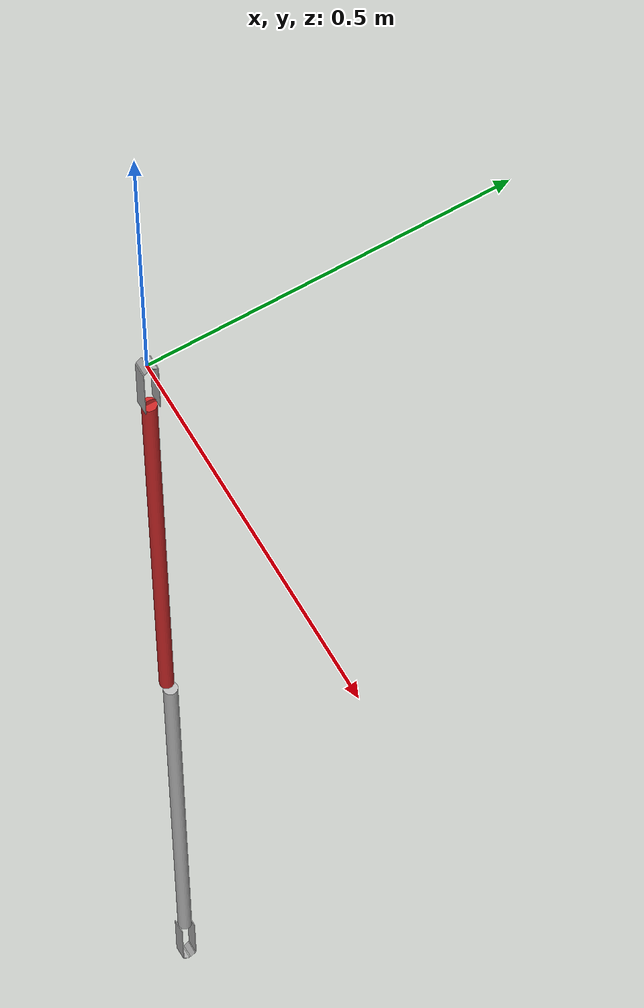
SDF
<sdf version='1.7'>
  <model name='gibbon'>
    <link name='link_1_tip'>
      <inertial>
        <pose>0 0 0 0 -0 0</pose>
        <mass>1e-05</mass>
        <inertia>
          <ixx>1</ixx>
          <ixy>0</ixy>
          <ixz>0</ixz>
          <iyy>1</iyy>
          <iyz>0</iyz>
          <izz>1</izz>
        </inertia>
      </inertial>
    </link>
    <joint name='link_1__link_1_tip' type='revolute'>
      <pose relative_to='link_1_tip'>0 0 -0.1 0 -0 0</pose>
      <parent>link_1_tip</parent>
      <child>link_1</child>
      <axis>
        <xyz>1 0 0</xyz>
        <limit>
          <lower>0</lower>
          <upper>0</upper>
          <effort>0</effort>
          <velocity>0</velocity>
        </limit>
        <dynamics>
          <spring_reference>0</spring_reference>
          <spring_stiffness>0</spring_stiffness>
        </dynamics>
      </axis>
    </joint>
    <link name='link_1'>
      <pose relative_to='link_1__link_1_tip'>0 0 0 0 -0 0</pose>
      <inertial>
        <pose>0 0 -0.399996 0 -0 0</pose>
        <mass>1.00001</mass>
        <inertia>
          <ixx>0.05</ixx>
          <ixy>0</ixy>
          <ixz>0</ixz>
          <iyy>0.05</iyy>
          <iyz>0</iyz>
          <izz>0.01</izz>
        </inertia>
      </inertial>
      <collision name='link_1_collision'>
        <pose>0 0 -0.4 0 -0 0</pose>
        <geometry>
          <cylinder>
            <length>0.8</length>
            <radius>0.01</radius>
          </cylinder>
        </geometry>
        <surface>
          <contact>
            <ode/>
          </contact>
          <friction>
            <ode/>
          </friction>
        </surface>
      </collision>
      <collision name='link_1_gripper_pole_collision_1'>
        <pose>0 0 0 0 -1.5708 0</pose>
        <geometry>
          <cylinder>
            <length>0</length>
            <radius>0.01</radius>
          </cylinder>
        </geometry>
        <surface>
          <contact>
            <ode/>
          </contact>
          <friction>
            <ode/>
          </friction>
        </surface>
      </collision>
      <visual name='link_1_visual'>
        <pose>0 0 -0.4 0 -0 0</pose>
        <geometry>
          <cylinder>
            <length>0.8</length>
            <radius>0.01</radius>
          </cylinder>
        </geometry>
        <material>
          <script>
            <name>Gazebo/Red</name>
            <uri>file://media/materials/scripts/gazebo.material</uri>
          </script>
        </material>
      </visual>
      <visual name='link_1_gripper_pole_visual_1'>
        <pose>0 0 0 0 -1.5708 0</pose>
        <geometry>
          <cylinder>
            <length>0</length>
            <radius>0.01</radius>
          </cylinder>
        </geometry>
        <material>
          <script>
            <name>Gazebo/Red</name>
            <uri>file://media/materials/scripts/gazebo.material</uri>
          </script>
        </material>
      </visual>
    </link>
    <joint name='link_1_left_gripper_joint' type='revolute'>
      <pose relative_to='link_1'>0 0.01 0 0 -1.5708 0</pose>
      <parent>link_1</parent>
      <child>link_1_left_gripper</child>
      <axis>
        <xyz>0 0 1</xyz>
        <limit>
          <lower>0</lower>
          <upper>3</upper>
          <effort>100</effort>
          <velocity>30</velocity>
        </limit>
        <dynamics>
          <spring_reference>0</spring_reference>
          <spring_stiffness>0</spring_stiffness>
        </dynamics>
      </axis>
    </joint>
    <link name='link_1_left_gripper'>
      <pose relative_to='link_1_left_gripper_joint'>0 0 0 0 -0 0</pose>
      <inertial>
        <pose>0 0 0 0 -0 0</pose>
        <mass>0.05</mass>
        <inertia>
          <ixx>1</ixx>
          <ixy>0</ixy>
          <ixz>0</ixz>
          <iyy>1</iyy>
          <iyz>0</iyz>
          <izz>1</izz>
        </inertia>
      </inertial>
      <collision name='link_1_left_gripper_collision'>
        <pose>0.05 0 0 1.5708 -0 1.5708</pose>
        <geometry>
          <box>
            <size>0.001 0.02 0.1</size>
          </box>
        </geometry>
        <surface>
          <contact>
            <ode>
              <spring_reference>0</spring_reference>
              <spring_stiffness>1000</spring_stiffness>
            </ode>
          </contact>
          <friction>
            <ode>
              <mu>0.001</mu>
              <mu2>0.001</mu2>
            </ode>
          </friction>
        </surface>
      </collision>
      <collision name='link_1_left_gripper_collision_1'>
        <pose>0.104 -0.005 0 0 -0 0.7</pose>
        <geometry>
          <box>
            <size>0.001 0.01 0.02</size>
          </box>
        </geometry>
        <surface>
          <contact>
            <ode>
              <spring_reference>0</spring_reference>
              <spring_stiffness>1000</spring_stiffness>
            </ode>
          </contact>
          <friction>
            <ode>
              <mu>0.001</mu>
              <mu2>0.001</mu2>
            </ode>
          </friction>
        </surface>
      </collision>
      <visual name='link_1_left_gripper_visual'>
        <pose>0.05 0 0 1.5708 -0 1.5708</pose>
        <geometry>
          <box>
            <size>0.001 0.02 0.1</size>
          </box>
        </geometry>
      </visual>
      <visual name='link_1_left_gripper_visual_1'>
        <pose>0.104 -0.005 0 0 -0 0.7</pose>
        <geometry>
          <box>
            <size>0.001 0.01 0.02</size>
          </box>
        </geometry>
      </visual>
    </link>
    <joint name='link_1_right_gripper_joint' type='revolute'>
      <pose relative_to='link_1'>0 -0.01 0 0 -1.5708 0</pose>
      <parent>link_1</parent>
      <child>link_1_right_gripper</child>
      <axis>
        <xyz>0 0 -1</xyz>
        <limit>
          <lower>0</lower>
          <upper>3</upper>
          <effort>100</effort>
          <velocity>30</velocity>
        </limit>
        <dynamics>
          <spring_reference>0</spring_reference>
          <spring_stiffness>0</spring_stiffness>
        </dynamics>
      </axis>
    </joint>
    <link name='link_1_right_gripper'>
      <pose relative_to='link_1_right_gripper_joint'>0 0 0 0 -0 0</pose>
      <inertial>
        <pose>0 0 0 0 -0 0</pose>
        <mass>0.05</mass>
        <inertia>
          <ixx>1</ixx>
          <ixy>0</ixy>
          <ixz>0</ixz>
          <iyy>1</iyy>
          <iyz>0</iyz>
          <izz>1</izz>
        </inertia>
      </inertial>
      <collision name='link_1_right_gripper_collision'>
        <pose>0.05 0 0 -1.5708 -0 -1.5708</pose>
        <geometry>
          <box>
            <size>0.001 0.02 0.1</size>
          </box>
        </geometry>
        <surface>
          <contact>
            <ode>
              <spring_reference>0</spring_reference>
              <spring_stiffness>1000</spring_stiffness>
            </ode>
          </contact>
          <friction>
            <ode>
              <mu>0.001</mu>
              <mu2>0.001</mu2>
            </ode>
          </friction>
        </surface>
      </collision>
      <collision name='link_1_right_gripper_collision_1'>
        <pose>0.104 0.005 0 0 0 -0.7</pose>
        <geometry>
          <box>
            <size>0.001 0.01 0.02</size>
          </box>
        </geometry>
        <surface>
          <contact>
            <ode>
              <spring_reference>0</spring_reference>
              <spring_stiffness>1000</spring_stiffness>
            </ode>
          </contact>
          <friction>
            <ode>
              <mu>0.001</mu>
              <mu2>0.001</mu2>
            </ode>
          </friction>
        </surface>
      </collision>
      <visual name='link_1_right_gripper_visual'>
        <pose>0.05 0 0 -1.5708 -0 -1.5708</pose>
        <geometry>
          <box>
            <size>0.001 0.02 0.1</size>
          </box>
        </geometry>
      </visual>
      <visual name='link_1_right_gripper_visual_1'>
        <pose>0.104 0.005 0 0 0 -0.7</pose>
        <geometry>
          <box>
            <size>0.001 0.01 0.02</size>
          </box>
        </geometry>
      </visual>
    </link>
    <joint name='link_1__link_2' type='revolute'>
      <pose relative_to='link_1'>0.01 0 -0.8 3.14159 -0 0</pose>
      <parent>link_1</parent>
      <child>link_2</child>
      <axis>
        <xyz>1 0 0</xyz>
        <limit>
          <lower>-6.28319</lower>
          <upper>6.28319</upper>
          <effort>100</effort>
          <velocity>30</velocity>
        </limit>
        <dynamics>
          <damping>0.0</damping>
          <friction>0.0</friction>
          <spring_reference>0.0</spring_reference>
          <spring_stiffness>0.0</spring_stiffness>
        </dynamics>
      </axis>
    </joint>
    <link name='link_2'>
      <pose relative_to='link_1__link_2'>0 0 0 0 -0 0</pose>
      <inertial>
        <pose>0 0 0.400004 0 -0 0</pose>
        <mass>1.00001</mass>
        <inertia>
          <ixx>0.05</ixx>
          <ixy>0</ixy>
          <ixz>0</ixz>
          <iyy>0.05</iyy>
          <iyz>0</iyz>
          <izz>0.01</izz>
        </inertia>
      </inertial>
      <collision name='link_2_collision'>
        <pose>0 0 0.4 0 -0 0</pose>
        <geometry>
          <cylinder>
            <length>0.8</length>
            <radius>0.01</radius>
          </cylinder>
        </geometry>
      </collision>
      <collision name='link_2_gripper_pole_collision_1'>
        <pose>0 0 0.8 0 -1.5708 0</pose>
        <geometry>
          <cylinder>
            <length>0</length>
            <radius>0.01</radius>
          </cylinder>
        </geometry>
      </collision>
      <visual name='link_2_visual'>
        <pose>0 0 0.4 0 -0 0</pose>
        <geometry>
          <cylinder>
            <length>0.8</length>
            <radius>0.01</radius>
          </cylinder>
        </geometry>
      </visual>
      <visual name='link_2_gripper_pole_visual_1'>
        <pose>0 0 0.8 0 -1.5708 0</pose>
        <geometry>
          <cylinder>
            <length>0</length>
            <radius>0.01</radius>
          </cylinder>
        </geometry>
      </visual>
    </link>
    <joint name='link_2_left_gripper_joint' type='revolute'>
      <pose relative_to='link_2'>0 0.01 0.8 0 -1.5708 0</pose>
      <parent>link_2</parent>
      <child>link_2_left_gripper</child>
      <axis>
        <xyz>0 0 1</xyz>
        <limit>
          <lower>0</lower>
          <upper>3</upper>
          <effort>100</effort>
          <velocity>30</velocity>
        </limit>
        <dynamics>
          <spring_reference>0</spring_reference>
          <spring_stiffness>0</spring_stiffness>
        </dynamics>
      </axis>
    </joint>
    <link name='link_2_left_gripper'>
      <pose relative_to='link_2_left_gripper_joint'>0 0 0 0 -0 0</pose>
      <inertial>
        <pose>0 0 0 0 -0 0</pose>
        <mass>0.05</mass>
        <inertia>
          <ixx>1</ixx>
          <ixy>0</ixy>
          <ixz>0</ixz>
          <iyy>1</iyy>
          <iyz>0</iyz>
          <izz>1</izz>
        </inertia>
      </inertial>
      <collision name='link_2_left_gripper_collision'>
        <pose>0.05 0 0 1.5708 -0 1.5708</pose>
        <geometry>
          <box>
            <size>0.001 0.02 0.1</size>
          </box>
        </geometry>
        <surface>
          <contact>
            <ode>
              <spring_reference>0</spring_reference>
              <spring_stiffness>1000</spring_stiffness>
            </ode>
          </contact>
          <friction>
            <ode>
              <mu>0.001</mu>
              <mu2>0.001</mu2>
            </ode>
          </friction>
        </surface>
      </collision>
      <collision name='link_2_left_gripper_collision_1'>
        <pose>0.104 -0.005 0 0 -0 0.7</pose>
        <geometry>
          <box>
            <size>0.001 0.01 0.02</size>
          </box>
        </geometry>
        <surface>
          <contact>
            <ode>
              <spring_reference>0</spring_reference>
              <spring_stiffness>1000</spring_stiffness>
            </ode>
          </contact>
          <friction>
            <ode>
              <mu>0.001</mu>
              <mu2>0.001</mu2>
            </ode>
          </friction>
        </surface>
      </collision>
      <visual name='link_2_left_gripper_visual'>
        <pose>0.05 0 0 1.5708 -0 1.5708</pose>
        <geometry>
          <box>
            <size>0.001 0.02 0.1</size>
          </box>
        </geometry>
      </visual>
      <visual name='link_2_left_gripper_visual_1'>
        <pose>0.104 -0.005 0 0 -0 0.7</pose>
        <geometry>
          <box>
            <size>0.001 0.01 0.02</size>
          </box>
        </geometry>
      </visual>
    </link>
    <joint name='link_2_right_gripper_joint' type='revolute'>
      <pose relative_to='link_2'>0 -0.01 0.8 0 -1.5708 0</pose>
      <parent>link_2</parent>
      <child>link_2_right_gripper</child>
      <axis>
        <xyz>0 0 -1</xyz>
        <limit>
          <lower>0</lower>
          <upper>3</upper>
          <effort>100</effort>
          <velocity>30</velocity>
        </limit>
        <dynamics>
          <spring_reference>0</spring_reference>
          <spring_stiffness>0</spring_stiffness>
        </dynamics>
      </axis>
    </joint>
    <link name='link_2_right_gripper'>
      <pose relative_to='link_2_right_gripper_joint'>0 0 0 0 -0 0</pose>
      <inertial>
        <pose>0 0 0 0 -0 0</pose>
        <mass>0.05</mass>
        <inertia>
          <ixx>1</ixx>
          <ixy>0</ixy>
          <ixz>0</ixz>
          <iyy>1</iyy>
          <iyz>0</iyz>
          <izz>1</izz>
        </inertia>
      </inertial>
      <collision name='link_2_right_gripper_collision'>
        <pose>0.05 0 0 -1.5708 -0 -1.5708</pose>
        <geometry>
          <box>
            <size>0.001 0.02 0.1</size>
          </box>
        </geometry>
        <surface>
          <contact>
            <ode>
              <spring_reference>0</spring_reference>
              <spring_stiffness>1000</spring_stiffness>
            </ode>
          </contact>
          <friction>
            <ode>
              <mu>0.001</mu>
              <mu2>0.001</mu2>
            </ode>
          </friction>
        </surface>
      </collision>
      <collision name='link_2_right_gripper_collision_1'>
        <pose>0.104 0.005 0 0 0 -0.7</pose>
        <geometry>
          <box>
            <size>0.001 0.01 0.02</size>
          </box>
        </geometry>
        <surface>
          <contact>
            <ode>
              <spring_reference>0</spring_reference>
              <spring_stiffness>1000</spring_stiffness>
            </ode>
          </contact>
          <friction>
            <ode>
              <mu>0.001</mu>
              <mu2>0.001</mu2>
            </ode>
          </friction>
        </surface>
      </collision>
      <visual name='link_2_right_gripper_visual'>
        <pose>0.05 0 0 -1.5708 -0 -1.5708</pose>
        <geometry>
          <box>
            <size>0.001 0.02 0.1</size>
          </box>
        </geometry>
      </visual>
      <visual name='link_2_right_gripper_visual_1'>
        <pose>0.104 0.005 0 0 0 -0.7</pose>
        <geometry>
          <box>
            <size>0.001 0.01 0.02</size>
          </box>
        </geometry>
      </visual>
    </link>
    <joint name='link_2__link_2_tip' type='revolute'>
      <pose relative_to='link_2'>0.02 0 0.9 0 -0 0</pose>
      <parent>link_2</parent>
      <child>link_2_tip</child>
      <axis>
        <xyz>1 0 0</xyz>
        <limit>
          <lower>0</lower>
          <upper>0</upper>
          <effort>0</effort>
          <velocity>0</velocity>
        </limit>
        <dynamics>
          <spring_reference>0</spring_reference>
          <spring_stiffness>0</spring_stiffness>
        </dynamics>
      </axis>
    </joint>
    <link name='link_2_tip'>
      <pose relative_to='link_2__link_2_tip'>0 0 0 0 -0 0</pose>
      <inertial>
        <pose>0 0 0 0 -0 0</pose>
        <mass>1e-05</mass>
        <inertia>
          <ixx>1</ixx>
          <ixy>0</ixy>
          <ixz>0</ixz>
          <iyy>1</iyy>
          <iyz>0</iyz>
          <izz>1</izz>
        </inertia>
      </inertial>
    </link>
    <static>0</static>
    <plugin name='gazebo_ros_control' filename='libgazebo_ros_control.so'>
      <robotNamespace>/gibbon</robotNamespace>
    </plugin>
  </model>
</sdf>
